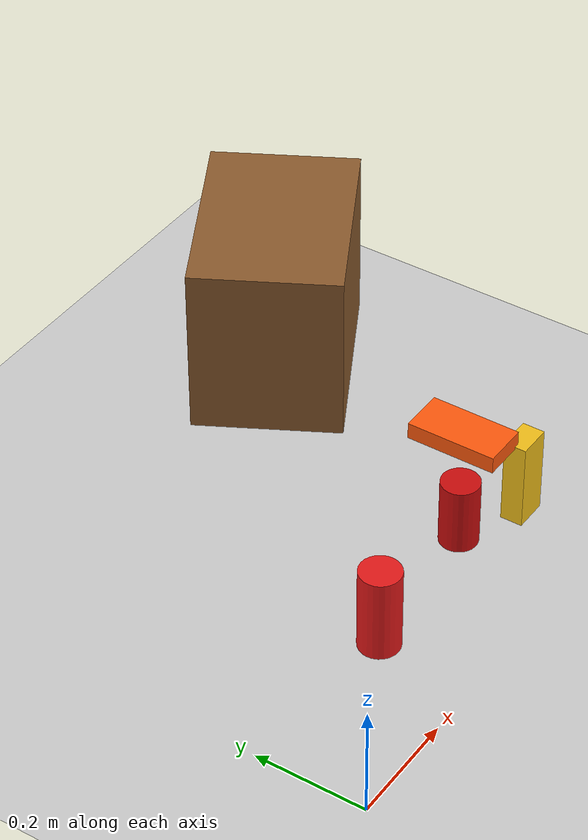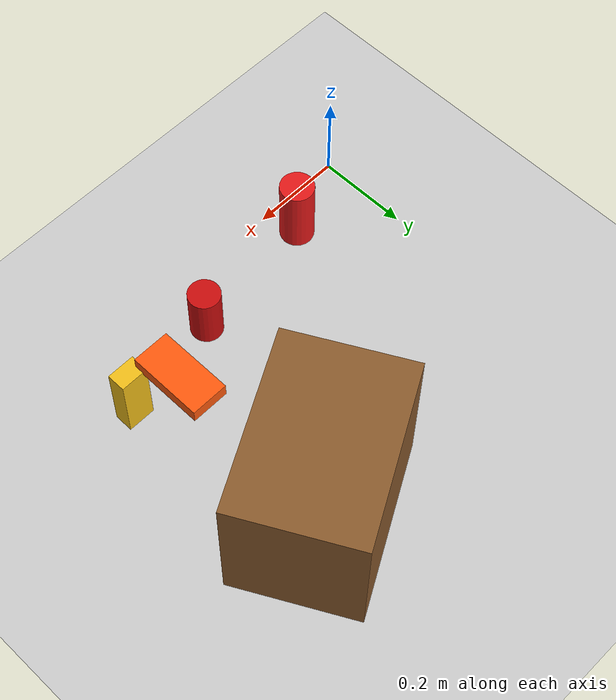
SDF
<?xml version="1.0" ?>

<sdf version="1.6">
  <world name="default">

    <!-- Plugin for simulating physics -->
    <plugin
      filename="gz-sim-physics-system"
      name="gz::sim::systems::Physics">
      <!-- DART in Gazebo Harmonic does not implement mimic constraints.
           Bullet Featherstone keeps both fingers of each gripper coupled. -->
      <engine>
        <filename>gz-physics-bullet-featherstone-plugin</filename>
      </engine>
    </plugin>

    <!-- Plugin for handling user commands -->
    <plugin
      filename="gz-sim-user-commands-system"
      name="gz::sim::systems::UserCommands">
    </plugin>

    <!-- Plugin for broadcasting scene updates -->
    <plugin
      filename="gz-sim-scene-broadcaster-system"
      name="gz::sim::systems::SceneBroadcaster">
    </plugin>

    <!-- Plugin for sensor handling -->
    <plugin
      filename="gz-sim-sensors-system"
      name="gz::sim::systems::Sensors">
      <render_engine>ogre2</render_engine>
    </plugin>

    <!-- To add realistic gravity, do: 0.0 0.0 -9.8, otherwise do 0.0 0.0 0.0 -->
    <gravity>0.0 0.0 -9.8</gravity>
    <!-- Local sun light: avoids downloading model://Sun from Fuel -->
    <light type="directional" name="sun">
      <cast_shadows>true</cast_shadows>
      <pose>0 0 10 0 0 0</pose>
      <diffuse>0.8 0.8 0.8 1</diffuse>
      <specular>0.2 0.2 0.2 1</specular>
      <attenuation>
        <range>1000</range>
        <constant>0.9</constant>
        <linear>0.01</linear>
        <quadratic>0.001</quadratic>
      </attenuation>
      <direction>-0.5 0.1 -0.9</direction>
    </light>
    <!-- Local ground plane: avoids downloading model://Ground Plane from Fuel -->
    <model name="ground_plane">
      <static>true</static>
      <link name="link">
        <collision name="collision">
          <geometry>
            <plane>
              <normal>0 0 1</normal>
              <size>100 100</size>
            </plane>
          </geometry>
        </collision>
        <visual name="visual">
          <geometry>
            <plane>
              <normal>0 0 1</normal>
              <size>100 100</size>
            </plane>
          </geometry>
          <material>
            <ambient>0.8 0.8 0.8 1</ambient>
            <diffuse>0.8 0.8 0.8 1</diffuse>
            <specular>0.1 0.1 0.1 1</specular>
          </material>
        </visual>
      </link>
    </model>

    <!-- Self-contained primitive objects replace Classic Gazebo model:// URIs. -->
    <model name="red_cylinder">
      <pose>0.22 0.12 0.175 0 0 0</pose>
      <link name="link">
        <inertial>
          <mass>0.2</mass>
          <inertia>
            <ixx>0.00039</ixx><iyy>0.00039</iyy><izz>0.000123</izz>
          </inertia>
        </inertial>
        <collision name="collision">
          <geometry><cylinder><radius>0.035</radius><length>0.15</length></cylinder></geometry>
        </collision>
        <visual name="visual">
          <geometry><cylinder><radius>0.035</radius><length>0.15</length></cylinder></geometry>
          <material><ambient>0.8 0.05 0.05 1</ambient><diffuse>0.9 0.1 0.1 1</diffuse></material>
        </visual>
      </link>
    </model>

    <model name="mustard">
      <pose>0.7 0.15 0.08 0 0 0</pose>
      <link name="link">
        <inertial>
          <mass>0.2</mass>
          <inertia>
            <ixx>0.000453</ixx><iyy>0.000487</iyy><izz>0.000087</izz>
          </inertia>
        </inertial>
        <collision name="collision">
          <geometry><box><size>0.06 0.04 0.16</size></box></geometry>
        </collision>
        <visual name="visual">
          <geometry><box><size>0.06 0.04 0.16</size></box></geometry>
          <material><ambient>0.8 0.6 0.05 1</ambient><diffuse>0.95 0.75 0.1 1</diffuse></material>
        </visual>
      </link>
    </model>

    <model name="cheezit_big_original">
      <pose>0.64 0.23 0.17 1.571 0 0</pose>
      <link name="link">
        <inertial>
          <mass>0.15</mass>
          <inertia>
            <ixx>0.000331</ixx><iyy>0.0004</iyy><izz>0.000091</izz>
          </inertia>
        </inertial>
        <collision name="collision">
          <geometry><box><size>0.08 0.03 0.16</size></box></geometry>
        </collision>
        <visual name="visual">
          <geometry><box><size>0.08 0.03 0.16</size></box></geometry>
          <material><ambient>0.9 0.25 0.03 1</ambient><diffuse>1 0.35 0.05 1</diffuse></material>
        </visual>
      </link>
    </model>

    <model name="cardboard_box">
      <pose>0.65 0.60 0.3 0 0 0.5</pose>
      <link name="link">
        <inertial>
          <mass>0.5</mass>
          <inertia>
            <ixx>0.00651</ixx><iyy>0.00885</iyy><izz>0.00771</izz>
          </inertia>
        </inertial>
        <collision name="collision">
          <geometry><box><size>0.35 0.25 0.3</size></box></geometry>
        </collision>
        <visual name="visual">
          <geometry><box><size>0.35 0.25 0.3</size></box></geometry>
          <material><ambient>0.45 0.28 0.12 1</ambient><diffuse>0.55 0.36 0.18 1</diffuse></material>
        </visual>
      </link>
    </model>

    <model name="coke_can">
      <pose>0.5 0.15 0.15 0 0 2.3</pose>
      <link name="link">
        <inertial>
          <mass>0.33</mass>
          <inertia>
            <ixx>0.000422</ixx><iyy>0.000422</iyy><izz>0.00018</izz>
          </inertia>
        </inertial>
        <collision name="collision">
          <geometry><cylinder><radius>0.033</radius><length>0.12</length></cylinder></geometry>
        </collision>
        <visual name="visual">
          <geometry><cylinder><radius>0.033</radius><length>0.12</length></cylinder></geometry>
          <material><ambient>0.65 0.02 0.02 1</ambient><diffuse>0.8 0.05 0.05 1</diffuse></material>
        </visual>
      </link>
    </model>

    <!-- Define scene properties -->
    <scene>
      <shadows>false</shadows>
    </scene>

  </world>
</sdf>
